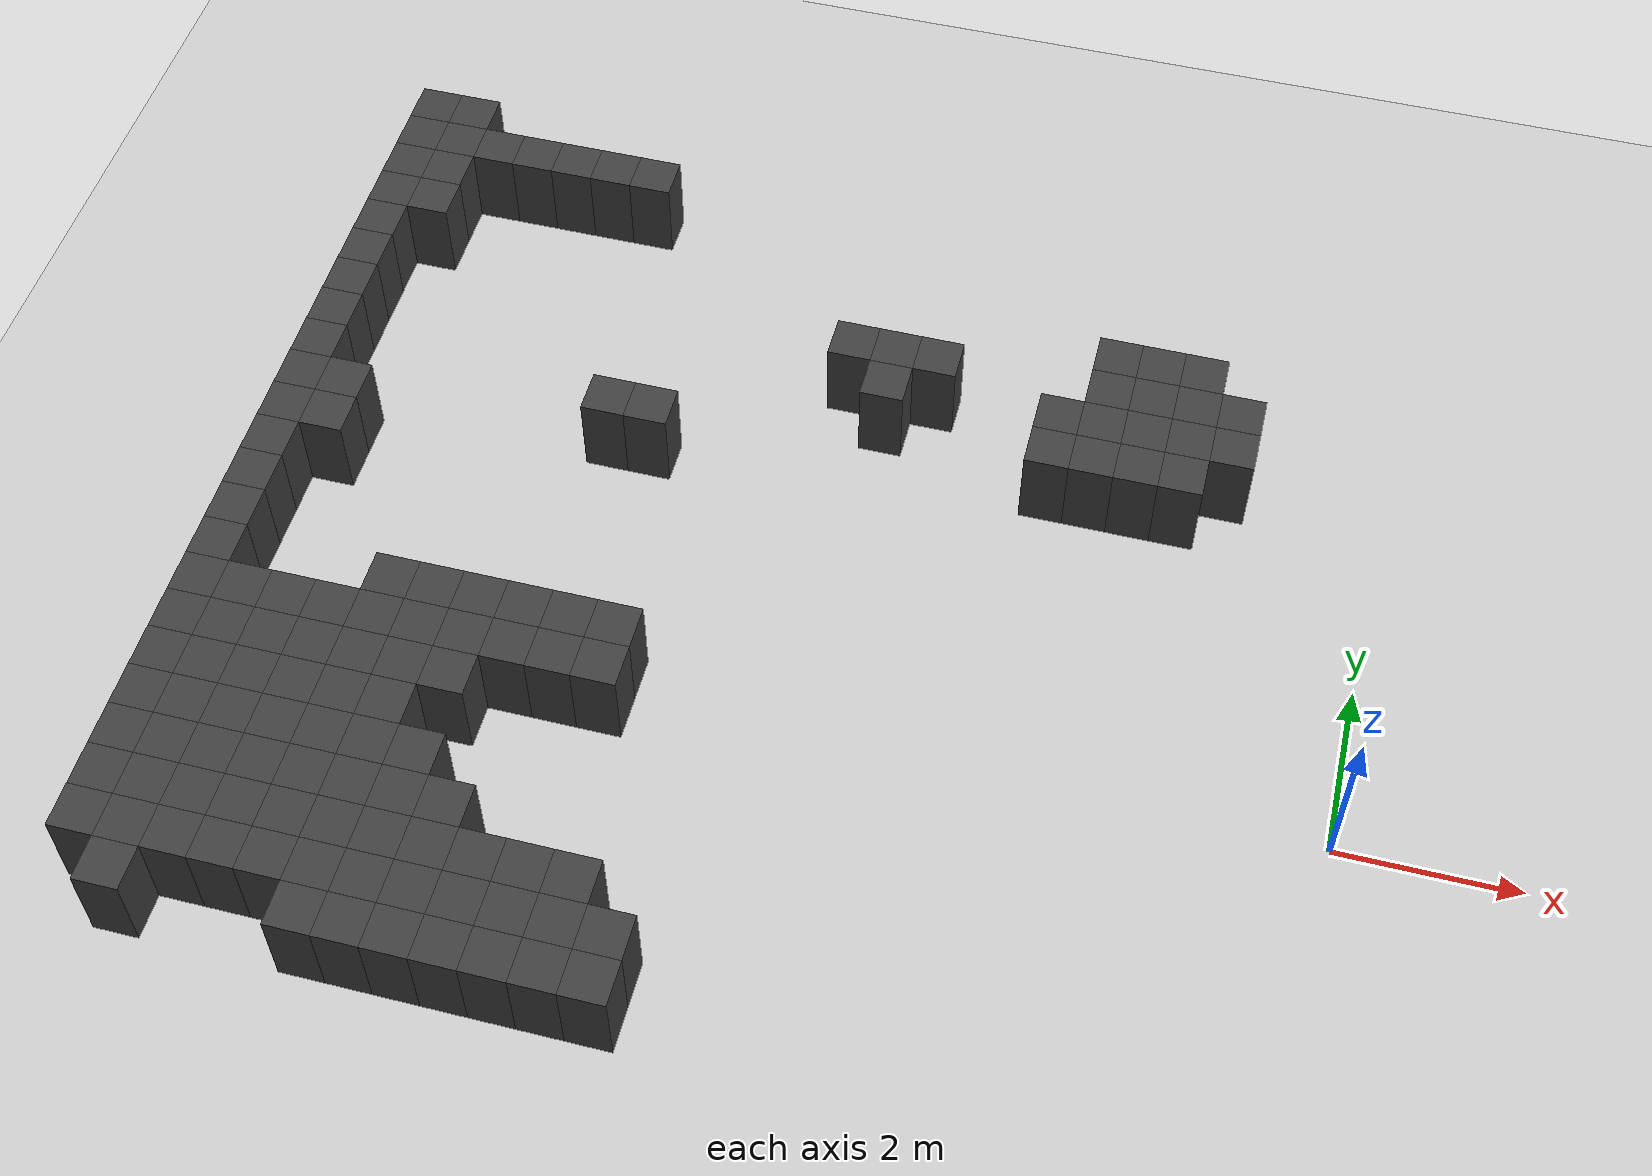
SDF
<sdf version="1.7">
 <world name="map_7972">
  <model name="ground_plane">
   <static>true</static>
   <link name="link">
    <collision name="collision">
     <geometry><plane><normal>0 0 1</normal><size>200 200</size></plane></geometry>
    </collision>
    <visual name="visual">
     <geometry><plane><normal>0 0 1</normal><size>200 200</size></plane></geometry>
     <material><ambient>0.8 0.8 0.8 1</ambient><diffuse>0.8 0.8 0.8 1</diffuse></material>
    </visual>
   </link>
  </model>
  <model name="maze_environment">
   <static>true</static>
   <link name="wall_221">
    <pose>-12.250 7.250 0.500 0 0 0</pose>
    <collision name="col"><geometry><box><size>0.5 0.5 1.0</size></box></geometry></collision>
    <visual name="vis">
     <geometry><box><size>0.5 0.5 1.0</size></box></geometry>
     <material><ambient>0.15 0.15 0.15 1</ambient><diffuse>0.25 0.25 0.25 1</diffuse></material>
    </visual>
   </link>
   <link name="wall_222">
    <pose>-11.750 7.250 0.500 0 0 0</pose>
    <collision name="col"><geometry><box><size>0.5 0.5 1.0</size></box></geometry></collision>
    <visual name="vis">
     <geometry><box><size>0.5 0.5 1.0</size></box></geometry>
     <material><ambient>0.15 0.15 0.15 1</ambient><diffuse>0.25 0.25 0.25 1</diffuse></material>
    </visual>
   </link>
   <link name="wall_241">
    <pose>-12.250 6.750 0.500 0 0 0</pose>
    <collision name="col"><geometry><box><size>0.5 0.5 1.0</size></box></geometry></collision>
    <visual name="vis">
     <geometry><box><size>0.5 0.5 1.0</size></box></geometry>
     <material><ambient>0.15 0.15 0.15 1</ambient><diffuse>0.25 0.25 0.25 1</diffuse></material>
    </visual>
   </link>
   <link name="wall_242">
    <pose>-11.750 6.750 0.500 0 0 0</pose>
    <collision name="col"><geometry><box><size>0.5 0.5 1.0</size></box></geometry></collision>
    <visual name="vis">
     <geometry><box><size>0.5 0.5 1.0</size></box></geometry>
     <material><ambient>0.15 0.15 0.15 1</ambient><diffuse>0.25 0.25 0.25 1</diffuse></material>
    </visual>
   </link>
   <link name="wall_243">
    <pose>-11.250 6.750 0.500 0 0 0</pose>
    <collision name="col"><geometry><box><size>0.5 0.5 1.0</size></box></geometry></collision>
    <visual name="vis">
     <geometry><box><size>0.5 0.5 1.0</size></box></geometry>
     <material><ambient>0.15 0.15 0.15 1</ambient><diffuse>0.25 0.25 0.25 1</diffuse></material>
    </visual>
   </link>
   <link name="wall_244">
    <pose>-10.750 6.750 0.500 0 0 0</pose>
    <collision name="col"><geometry><box><size>0.5 0.5 1.0</size></box></geometry></collision>
    <visual name="vis">
     <geometry><box><size>0.5 0.5 1.0</size></box></geometry>
     <material><ambient>0.15 0.15 0.15 1</ambient><diffuse>0.25 0.25 0.25 1</diffuse></material>
    </visual>
   </link>
   <link name="wall_245">
    <pose>-10.250 6.750 0.500 0 0 0</pose>
    <collision name="col"><geometry><box><size>0.5 0.5 1.0</size></box></geometry></collision>
    <visual name="vis">
     <geometry><box><size>0.5 0.5 1.0</size></box></geometry>
     <material><ambient>0.15 0.15 0.15 1</ambient><diffuse>0.25 0.25 0.25 1</diffuse></material>
    </visual>
   </link>
   <link name="wall_246">
    <pose>-9.750 6.750 0.500 0 0 0</pose>
    <collision name="col"><geometry><box><size>0.5 0.5 1.0</size></box></geometry></collision>
    <visual name="vis">
     <geometry><box><size>0.5 0.5 1.0</size></box></geometry>
     <material><ambient>0.15 0.15 0.15 1</ambient><diffuse>0.25 0.25 0.25 1</diffuse></material>
    </visual>
   </link>
   <link name="wall_247">
    <pose>-9.250 6.750 0.500 0 0 0</pose>
    <collision name="col"><geometry><box><size>0.5 0.5 1.0</size></box></geometry></collision>
    <visual name="vis">
     <geometry><box><size>0.5 0.5 1.0</size></box></geometry>
     <material><ambient>0.15 0.15 0.15 1</ambient><diffuse>0.25 0.25 0.25 1</diffuse></material>
    </visual>
   </link>
   <link name="wall_252">
    <pose>-12.250 6.250 0.500 0 0 0</pose>
    <collision name="col"><geometry><box><size>0.5 0.5 1.0</size></box></geometry></collision>
    <visual name="vis">
     <geometry><box><size>0.5 0.5 1.0</size></box></geometry>
     <material><ambient>0.15 0.15 0.15 1</ambient><diffuse>0.25 0.25 0.25 1</diffuse></material>
    </visual>
   </link>
   <link name="wall_253">
    <pose>-11.750 6.250 0.500 0 0 0</pose>
    <collision name="col"><geometry><box><size>0.5 0.5 1.0</size></box></geometry></collision>
    <visual name="vis">
     <geometry><box><size>0.5 0.5 1.0</size></box></geometry>
     <material><ambient>0.15 0.15 0.15 1</ambient><diffuse>0.25 0.25 0.25 1</diffuse></material>
    </visual>
   </link>
   <link name="wall_260">
    <pose>-12.250 5.750 0.500 0 0 0</pose>
    <collision name="col"><geometry><box><size>0.5 0.5 1.0</size></box></geometry></collision>
    <visual name="vis">
     <geometry><box><size>0.5 0.5 1.0</size></box></geometry>
     <material><ambient>0.15 0.15 0.15 1</ambient><diffuse>0.25 0.25 0.25 1</diffuse></material>
    </visual>
   </link>
   <link name="wall_261">
    <pose>-11.750 5.750 0.500 0 0 0</pose>
    <collision name="col"><geometry><box><size>0.5 0.5 1.0</size></box></geometry></collision>
    <visual name="vis">
     <geometry><box><size>0.5 0.5 1.0</size></box></geometry>
     <material><ambient>0.15 0.15 0.15 1</ambient><diffuse>0.25 0.25 0.25 1</diffuse></material>
    </visual>
   </link>
   <link name="wall_269">
    <pose>-12.250 5.250 0.500 0 0 0</pose>
    <collision name="col"><geometry><box><size>0.5 0.5 1.0</size></box></geometry></collision>
    <visual name="vis">
     <geometry><box><size>0.5 0.5 1.0</size></box></geometry>
     <material><ambient>0.15 0.15 0.15 1</ambient><diffuse>0.25 0.25 0.25 1</diffuse></material>
    </visual>
   </link>
   <link name="wall_270">
    <pose>-3.250 5.250 0.500 0 0 0</pose>
    <collision name="col"><geometry><box><size>0.5 0.5 1.0</size></box></geometry></collision>
    <visual name="vis">
     <geometry><box><size>0.5 0.5 1.0</size></box></geometry>
     <material><ambient>0.15 0.15 0.15 1</ambient><diffuse>0.25 0.25 0.25 1</diffuse></material>
    </visual>
   </link>
   <link name="wall_271">
    <pose>-2.750 5.250 0.500 0 0 0</pose>
    <collision name="col"><geometry><box><size>0.5 0.5 1.0</size></box></geometry></collision>
    <visual name="vis">
     <geometry><box><size>0.5 0.5 1.0</size></box></geometry>
     <material><ambient>0.15 0.15 0.15 1</ambient><diffuse>0.25 0.25 0.25 1</diffuse></material>
    </visual>
   </link>
   <link name="wall_272">
    <pose>-2.250 5.250 0.500 0 0 0</pose>
    <collision name="col"><geometry><box><size>0.5 0.5 1.0</size></box></geometry></collision>
    <visual name="vis">
     <geometry><box><size>0.5 0.5 1.0</size></box></geometry>
     <material><ambient>0.15 0.15 0.15 1</ambient><diffuse>0.25 0.25 0.25 1</diffuse></material>
    </visual>
   </link>
   <link name="wall_281">
    <pose>-12.250 4.750 0.500 0 0 0</pose>
    <collision name="col"><geometry><box><size>0.5 0.5 1.0</size></box></geometry></collision>
    <visual name="vis">
     <geometry><box><size>0.5 0.5 1.0</size></box></geometry>
     <material><ambient>0.15 0.15 0.15 1</ambient><diffuse>0.25 0.25 0.25 1</diffuse></material>
    </visual>
   </link>
   <link name="wall_282">
    <pose>-6.250 4.750 0.500 0 0 0</pose>
    <collision name="col"><geometry><box><size>0.5 0.5 1.0</size></box></geometry></collision>
    <visual name="vis">
     <geometry><box><size>0.5 0.5 1.0</size></box></geometry>
     <material><ambient>0.15 0.15 0.15 1</ambient><diffuse>0.25 0.25 0.25 1</diffuse></material>
    </visual>
   </link>
   <link name="wall_283">
    <pose>-5.750 4.750 0.500 0 0 0</pose>
    <collision name="col"><geometry><box><size>0.5 0.5 1.0</size></box></geometry></collision>
    <visual name="vis">
     <geometry><box><size>0.5 0.5 1.0</size></box></geometry>
     <material><ambient>0.15 0.15 0.15 1</ambient><diffuse>0.25 0.25 0.25 1</diffuse></material>
    </visual>
   </link>
   <link name="wall_284">
    <pose>-5.250 4.750 0.500 0 0 0</pose>
    <collision name="col"><geometry><box><size>0.5 0.5 1.0</size></box></geometry></collision>
    <visual name="vis">
     <geometry><box><size>0.5 0.5 1.0</size></box></geometry>
     <material><ambient>0.15 0.15 0.15 1</ambient><diffuse>0.25 0.25 0.25 1</diffuse></material>
    </visual>
   </link>
   <link name="wall_285">
    <pose>-3.250 4.750 0.500 0 0 0</pose>
    <collision name="col"><geometry><box><size>0.5 0.5 1.0</size></box></geometry></collision>
    <visual name="vis">
     <geometry><box><size>0.5 0.5 1.0</size></box></geometry>
     <material><ambient>0.15 0.15 0.15 1</ambient><diffuse>0.25 0.25 0.25 1</diffuse></material>
    </visual>
   </link>
   <link name="wall_286">
    <pose>-2.750 4.750 0.500 0 0 0</pose>
    <collision name="col"><geometry><box><size>0.5 0.5 1.0</size></box></geometry></collision>
    <visual name="vis">
     <geometry><box><size>0.5 0.5 1.0</size></box></geometry>
     <material><ambient>0.15 0.15 0.15 1</ambient><diffuse>0.25 0.25 0.25 1</diffuse></material>
    </visual>
   </link>
   <link name="wall_287">
    <pose>-2.250 4.750 0.500 0 0 0</pose>
    <collision name="col"><geometry><box><size>0.5 0.5 1.0</size></box></geometry></collision>
    <visual name="vis">
     <geometry><box><size>0.5 0.5 1.0</size></box></geometry>
     <material><ambient>0.15 0.15 0.15 1</ambient><diffuse>0.25 0.25 0.25 1</diffuse></material>
    </visual>
   </link>
   <link name="wall_288">
    <pose>-1.750 4.750 0.500 0 0 0</pose>
    <collision name="col"><geometry><box><size>0.5 0.5 1.0</size></box></geometry></collision>
    <visual name="vis">
     <geometry><box><size>0.5 0.5 1.0</size></box></geometry>
     <material><ambient>0.15 0.15 0.15 1</ambient><diffuse>0.25 0.25 0.25 1</diffuse></material>
    </visual>
   </link>
   <link name="wall_299">
    <pose>-12.250 4.250 0.500 0 0 0</pose>
    <collision name="col"><geometry><box><size>0.5 0.5 1.0</size></box></geometry></collision>
    <visual name="vis">
     <geometry><box><size>0.5 0.5 1.0</size></box></geometry>
     <material><ambient>0.15 0.15 0.15 1</ambient><diffuse>0.25 0.25 0.25 1</diffuse></material>
    </visual>
   </link>
   <link name="wall_300">
    <pose>-5.750 4.250 0.500 0 0 0</pose>
    <collision name="col"><geometry><box><size>0.5 0.5 1.0</size></box></geometry></collision>
    <visual name="vis">
     <geometry><box><size>0.5 0.5 1.0</size></box></geometry>
     <material><ambient>0.15 0.15 0.15 1</ambient><diffuse>0.25 0.25 0.25 1</diffuse></material>
    </visual>
   </link>
   <link name="wall_301">
    <pose>-3.750 4.250 0.500 0 0 0</pose>
    <collision name="col"><geometry><box><size>0.5 0.5 1.0</size></box></geometry></collision>
    <visual name="vis">
     <geometry><box><size>0.5 0.5 1.0</size></box></geometry>
     <material><ambient>0.15 0.15 0.15 1</ambient><diffuse>0.25 0.25 0.25 1</diffuse></material>
    </visual>
   </link>
   <link name="wall_302">
    <pose>-3.250 4.250 0.500 0 0 0</pose>
    <collision name="col"><geometry><box><size>0.5 0.5 1.0</size></box></geometry></collision>
    <visual name="vis">
     <geometry><box><size>0.5 0.5 1.0</size></box></geometry>
     <material><ambient>0.15 0.15 0.15 1</ambient><diffuse>0.25 0.25 0.25 1</diffuse></material>
    </visual>
   </link>
   <link name="wall_303">
    <pose>-2.750 4.250 0.500 0 0 0</pose>
    <collision name="col"><geometry><box><size>0.5 0.5 1.0</size></box></geometry></collision>
    <visual name="vis">
     <geometry><box><size>0.5 0.5 1.0</size></box></geometry>
     <material><ambient>0.15 0.15 0.15 1</ambient><diffuse>0.25 0.25 0.25 1</diffuse></material>
    </visual>
   </link>
   <link name="wall_304">
    <pose>-2.250 4.250 0.500 0 0 0</pose>
    <collision name="col"><geometry><box><size>0.5 0.5 1.0</size></box></geometry></collision>
    <visual name="vis">
     <geometry><box><size>0.5 0.5 1.0</size></box></geometry>
     <material><ambient>0.15 0.15 0.15 1</ambient><diffuse>0.25 0.25 0.25 1</diffuse></material>
    </visual>
   </link>
   <link name="wall_305">
    <pose>-1.750 4.250 0.500 0 0 0</pose>
    <collision name="col"><geometry><box><size>0.5 0.5 1.0</size></box></geometry></collision>
    <visual name="vis">
     <geometry><box><size>0.5 0.5 1.0</size></box></geometry>
     <material><ambient>0.15 0.15 0.15 1</ambient><diffuse>0.25 0.25 0.25 1</diffuse></material>
    </visual>
   </link>
   <link name="wall_318">
    <pose>-12.250 3.750 0.500 0 0 0</pose>
    <collision name="col"><geometry><box><size>0.5 0.5 1.0</size></box></geometry></collision>
    <visual name="vis">
     <geometry><box><size>0.5 0.5 1.0</size></box></geometry>
     <material><ambient>0.15 0.15 0.15 1</ambient><diffuse>0.25 0.25 0.25 1</diffuse></material>
    </visual>
   </link>
   <link name="wall_319">
    <pose>-3.750 3.750 0.500 0 0 0</pose>
    <collision name="col"><geometry><box><size>0.5 0.5 1.0</size></box></geometry></collision>
    <visual name="vis">
     <geometry><box><size>0.5 0.5 1.0</size></box></geometry>
     <material><ambient>0.15 0.15 0.15 1</ambient><diffuse>0.25 0.25 0.25 1</diffuse></material>
    </visual>
   </link>
   <link name="wall_320">
    <pose>-3.250 3.750 0.500 0 0 0</pose>
    <collision name="col"><geometry><box><size>0.5 0.5 1.0</size></box></geometry></collision>
    <visual name="vis">
     <geometry><box><size>0.5 0.5 1.0</size></box></geometry>
     <material><ambient>0.15 0.15 0.15 1</ambient><diffuse>0.25 0.25 0.25 1</diffuse></material>
    </visual>
   </link>
   <link name="wall_321">
    <pose>-2.750 3.750 0.500 0 0 0</pose>
    <collision name="col"><geometry><box><size>0.5 0.5 1.0</size></box></geometry></collision>
    <visual name="vis">
     <geometry><box><size>0.5 0.5 1.0</size></box></geometry>
     <material><ambient>0.15 0.15 0.15 1</ambient><diffuse>0.25 0.25 0.25 1</diffuse></material>
    </visual>
   </link>
   <link name="wall_322">
    <pose>-2.250 3.750 0.500 0 0 0</pose>
    <collision name="col"><geometry><box><size>0.5 0.5 1.0</size></box></geometry></collision>
    <visual name="vis">
     <geometry><box><size>0.5 0.5 1.0</size></box></geometry>
     <material><ambient>0.15 0.15 0.15 1</ambient><diffuse>0.25 0.25 0.25 1</diffuse></material>
    </visual>
   </link>
   <link name="wall_334">
    <pose>-12.250 3.250 0.500 0 0 0</pose>
    <collision name="col"><geometry><box><size>0.5 0.5 1.0</size></box></geometry></collision>
    <visual name="vis">
     <geometry><box><size>0.5 0.5 1.0</size></box></geometry>
     <material><ambient>0.15 0.15 0.15 1</ambient><diffuse>0.25 0.25 0.25 1</diffuse></material>
    </visual>
   </link>
   <link name="wall_335">
    <pose>-8.750 3.250 0.500 0 0 0</pose>
    <collision name="col"><geometry><box><size>0.5 0.5 1.0</size></box></geometry></collision>
    <visual name="vis">
     <geometry><box><size>0.5 0.5 1.0</size></box></geometry>
     <material><ambient>0.15 0.15 0.15 1</ambient><diffuse>0.25 0.25 0.25 1</diffuse></material>
    </visual>
   </link>
   <link name="wall_336">
    <pose>-8.250 3.250 0.500 0 0 0</pose>
    <collision name="col"><geometry><box><size>0.5 0.5 1.0</size></box></geometry></collision>
    <visual name="vis">
     <geometry><box><size>0.5 0.5 1.0</size></box></geometry>
     <material><ambient>0.15 0.15 0.15 1</ambient><diffuse>0.25 0.25 0.25 1</diffuse></material>
    </visual>
   </link>
   <link name="wall_344">
    <pose>-12.250 2.750 0.500 0 0 0</pose>
    <collision name="col"><geometry><box><size>0.5 0.5 1.0</size></box></geometry></collision>
    <visual name="vis">
     <geometry><box><size>0.5 0.5 1.0</size></box></geometry>
     <material><ambient>0.15 0.15 0.15 1</ambient><diffuse>0.25 0.25 0.25 1</diffuse></material>
    </visual>
   </link>
   <link name="wall_345">
    <pose>-11.750 2.750 0.500 0 0 0</pose>
    <collision name="col"><geometry><box><size>0.5 0.5 1.0</size></box></geometry></collision>
    <visual name="vis">
     <geometry><box><size>0.5 0.5 1.0</size></box></geometry>
     <material><ambient>0.15 0.15 0.15 1</ambient><diffuse>0.25 0.25 0.25 1</diffuse></material>
    </visual>
   </link>
   <link name="wall_349">
    <pose>-12.250 2.250 0.500 0 0 0</pose>
    <collision name="col"><geometry><box><size>0.5 0.5 1.0</size></box></geometry></collision>
    <visual name="vis">
     <geometry><box><size>0.5 0.5 1.0</size></box></geometry>
     <material><ambient>0.15 0.15 0.15 1</ambient><diffuse>0.25 0.25 0.25 1</diffuse></material>
    </visual>
   </link>
   <link name="wall_350">
    <pose>-11.750 2.250 0.500 0 0 0</pose>
    <collision name="col"><geometry><box><size>0.5 0.5 1.0</size></box></geometry></collision>
    <visual name="vis">
     <geometry><box><size>0.5 0.5 1.0</size></box></geometry>
     <material><ambient>0.15 0.15 0.15 1</ambient><diffuse>0.25 0.25 0.25 1</diffuse></material>
    </visual>
   </link>
   <link name="wall_353">
    <pose>-12.250 1.750 0.500 0 0 0</pose>
    <collision name="col"><geometry><box><size>0.5 0.5 1.0</size></box></geometry></collision>
    <visual name="vis">
     <geometry><box><size>0.5 0.5 1.0</size></box></geometry>
     <material><ambient>0.15 0.15 0.15 1</ambient><diffuse>0.25 0.25 0.25 1</diffuse></material>
    </visual>
   </link>
   <link name="wall_356">
    <pose>-12.250 1.250 0.500 0 0 0</pose>
    <collision name="col"><geometry><box><size>0.5 0.5 1.0</size></box></geometry></collision>
    <visual name="vis">
     <geometry><box><size>0.5 0.5 1.0</size></box></geometry>
     <material><ambient>0.15 0.15 0.15 1</ambient><diffuse>0.25 0.25 0.25 1</diffuse></material>
    </visual>
   </link>
   <link name="wall_360">
    <pose>-12.250 0.750 0.500 0 0 0</pose>
    <collision name="col"><geometry><box><size>0.5 0.5 1.0</size></box></geometry></collision>
    <visual name="vis">
     <geometry><box><size>0.5 0.5 1.0</size></box></geometry>
     <material><ambient>0.15 0.15 0.15 1</ambient><diffuse>0.25 0.25 0.25 1</diffuse></material>
    </visual>
   </link>
   <link name="wall_370">
    <pose>-12.250 0.250 0.500 0 0 0</pose>
    <collision name="col"><geometry><box><size>0.5 0.5 1.0</size></box></geometry></collision>
    <visual name="vis">
     <geometry><box><size>0.5 0.5 1.0</size></box></geometry>
     <material><ambient>0.15 0.15 0.15 1</ambient><diffuse>0.25 0.25 0.25 1</diffuse></material>
    </visual>
   </link>
   <link name="wall_371">
    <pose>-10.250 0.250 0.500 0 0 0</pose>
    <collision name="col"><geometry><box><size>0.5 0.5 1.0</size></box></geometry></collision>
    <visual name="vis">
     <geometry><box><size>0.5 0.5 1.0</size></box></geometry>
     <material><ambient>0.15 0.15 0.15 1</ambient><diffuse>0.25 0.25 0.25 1</diffuse></material>
    </visual>
   </link>
   <link name="wall_372">
    <pose>-9.750 0.250 0.500 0 0 0</pose>
    <collision name="col"><geometry><box><size>0.5 0.5 1.0</size></box></geometry></collision>
    <visual name="vis">
     <geometry><box><size>0.5 0.5 1.0</size></box></geometry>
     <material><ambient>0.15 0.15 0.15 1</ambient><diffuse>0.25 0.25 0.25 1</diffuse></material>
    </visual>
   </link>
   <link name="wall_373">
    <pose>-9.250 0.250 0.500 0 0 0</pose>
    <collision name="col"><geometry><box><size>0.5 0.5 1.0</size></box></geometry></collision>
    <visual name="vis">
     <geometry><box><size>0.5 0.5 1.0</size></box></geometry>
     <material><ambient>0.15 0.15 0.15 1</ambient><diffuse>0.25 0.25 0.25 1</diffuse></material>
    </visual>
   </link>
   <link name="wall_374">
    <pose>-8.750 0.250 0.500 0 0 0</pose>
    <collision name="col"><geometry><box><size>0.5 0.5 1.0</size></box></geometry></collision>
    <visual name="vis">
     <geometry><box><size>0.5 0.5 1.0</size></box></geometry>
     <material><ambient>0.15 0.15 0.15 1</ambient><diffuse>0.25 0.25 0.25 1</diffuse></material>
    </visual>
   </link>
   <link name="wall_375">
    <pose>-8.250 0.250 0.500 0 0 0</pose>
    <collision name="col"><geometry><box><size>0.5 0.5 1.0</size></box></geometry></collision>
    <visual name="vis">
     <geometry><box><size>0.5 0.5 1.0</size></box></geometry>
     <material><ambient>0.15 0.15 0.15 1</ambient><diffuse>0.25 0.25 0.25 1</diffuse></material>
    </visual>
   </link>
   <link name="wall_376">
    <pose>-7.750 0.250 0.500 0 0 0</pose>
    <collision name="col"><geometry><box><size>0.5 0.5 1.0</size></box></geometry></collision>
    <visual name="vis">
     <geometry><box><size>0.5 0.5 1.0</size></box></geometry>
     <material><ambient>0.15 0.15 0.15 1</ambient><diffuse>0.25 0.25 0.25 1</diffuse></material>
    </visual>
   </link>
   <link name="wall_391">
    <pose>-12.250 -0.250 0.500 0 0 0</pose>
    <collision name="col"><geometry><box><size>0.5 0.5 1.0</size></box></geometry></collision>
    <visual name="vis">
     <geometry><box><size>0.5 0.5 1.0</size></box></geometry>
     <material><ambient>0.15 0.15 0.15 1</ambient><diffuse>0.25 0.25 0.25 1</diffuse></material>
    </visual>
   </link>
   <link name="wall_392">
    <pose>-11.750 -0.250 0.500 0 0 0</pose>
    <collision name="col"><geometry><box><size>0.5 0.5 1.0</size></box></geometry></collision>
    <visual name="vis">
     <geometry><box><size>0.5 0.5 1.0</size></box></geometry>
     <material><ambient>0.15 0.15 0.15 1</ambient><diffuse>0.25 0.25 0.25 1</diffuse></material>
    </visual>
   </link>
   <link name="wall_393">
    <pose>-11.250 -0.250 0.500 0 0 0</pose>
    <collision name="col"><geometry><box><size>0.5 0.5 1.0</size></box></geometry></collision>
    <visual name="vis">
     <geometry><box><size>0.5 0.5 1.0</size></box></geometry>
     <material><ambient>0.15 0.15 0.15 1</ambient><diffuse>0.25 0.25 0.25 1</diffuse></material>
    </visual>
   </link>
   <link name="wall_394">
    <pose>-10.750 -0.250 0.500 0 0 0</pose>
    <collision name="col"><geometry><box><size>0.5 0.5 1.0</size></box></geometry></collision>
    <visual name="vis">
     <geometry><box><size>0.5 0.5 1.0</size></box></geometry>
     <material><ambient>0.15 0.15 0.15 1</ambient><diffuse>0.25 0.25 0.25 1</diffuse></material>
    </visual>
   </link>
   <link name="wall_395">
    <pose>-10.250 -0.250 0.500 0 0 0</pose>
    <collision name="col"><geometry><box><size>0.5 0.5 1.0</size></box></geometry></collision>
    <visual name="vis">
     <geometry><box><size>0.5 0.5 1.0</size></box></geometry>
     <material><ambient>0.15 0.15 0.15 1</ambient><diffuse>0.25 0.25 0.25 1</diffuse></material>
    </visual>
   </link>
   <link name="wall_396">
    <pose>-9.750 -0.250 0.500 0 0 0</pose>
    <collision name="col"><geometry><box><size>0.5 0.5 1.0</size></box></geometry></collision>
    <visual name="vis">
     <geometry><box><size>0.5 0.5 1.0</size></box></geometry>
     <material><ambient>0.15 0.15 0.15 1</ambient><diffuse>0.25 0.25 0.25 1</diffuse></material>
    </visual>
   </link>
   <link name="wall_397">
    <pose>-9.250 -0.250 0.500 0 0 0</pose>
    <collision name="col"><geometry><box><size>0.5 0.5 1.0</size></box></geometry></collision>
    <visual name="vis">
     <geometry><box><size>0.5 0.5 1.0</size></box></geometry>
     <material><ambient>0.15 0.15 0.15 1</ambient><diffuse>0.25 0.25 0.25 1</diffuse></material>
    </visual>
   </link>
   <link name="wall_398">
    <pose>-8.750 -0.250 0.500 0 0 0</pose>
    <collision name="col"><geometry><box><size>0.5 0.5 1.0</size></box></geometry></collision>
    <visual name="vis">
     <geometry><box><size>0.5 0.5 1.0</size></box></geometry>
     <material><ambient>0.15 0.15 0.15 1</ambient><diffuse>0.25 0.25 0.25 1</diffuse></material>
    </visual>
   </link>
   <link name="wall_399">
    <pose>-8.250 -0.250 0.500 0 0 0</pose>
    <collision name="col"><geometry><box><size>0.5 0.5 1.0</size></box></geometry></collision>
    <visual name="vis">
     <geometry><box><size>0.5 0.5 1.0</size></box></geometry>
     <material><ambient>0.15 0.15 0.15 1</ambient><diffuse>0.25 0.25 0.25 1</diffuse></material>
    </visual>
   </link>
   <link name="wall_400">
    <pose>-7.750 -0.250 0.500 0 0 0</pose>
    <collision name="col"><geometry><box><size>0.5 0.5 1.0</size></box></geometry></collision>
    <visual name="vis">
     <geometry><box><size>0.5 0.5 1.0</size></box></geometry>
     <material><ambient>0.15 0.15 0.15 1</ambient><diffuse>0.25 0.25 0.25 1</diffuse></material>
    </visual>
   </link>
   <link name="wall_424">
    <pose>-12.250 -0.750 0.500 0 0 0</pose>
    <collision name="col"><geometry><box><size>0.5 0.5 1.0</size></box></geometry></collision>
    <visual name="vis">
     <geometry><box><size>0.5 0.5 1.0</size></box></geometry>
     <material><ambient>0.15 0.15 0.15 1</ambient><diffuse>0.25 0.25 0.25 1</diffuse></material>
    </visual>
   </link>
   <link name="wall_425">
    <pose>-11.750 -0.750 0.500 0 0 0</pose>
    <collision name="col"><geometry><box><size>0.5 0.5 1.0</size></box></geometry></collision>
    <visual name="vis">
     <geometry><box><size>0.5 0.5 1.0</size></box></geometry>
     <material><ambient>0.15 0.15 0.15 1</ambient><diffuse>0.25 0.25 0.25 1</diffuse></material>
    </visual>
   </link>
   <link name="wall_426">
    <pose>-11.250 -0.750 0.500 0 0 0</pose>
    <collision name="col"><geometry><box><size>0.5 0.5 1.0</size></box></geometry></collision>
    <visual name="vis">
     <geometry><box><size>0.5 0.5 1.0</size></box></geometry>
     <material><ambient>0.15 0.15 0.15 1</ambient><diffuse>0.25 0.25 0.25 1</diffuse></material>
    </visual>
   </link>
   <link name="wall_427">
    <pose>-10.750 -0.750 0.500 0 0 0</pose>
    <collision name="col"><geometry><box><size>0.5 0.5 1.0</size></box></geometry></collision>
    <visual name="vis">
     <geometry><box><size>0.5 0.5 1.0</size></box></geometry>
     <material><ambient>0.15 0.15 0.15 1</ambient><diffuse>0.25 0.25 0.25 1</diffuse></material>
    </visual>
   </link>
   <link name="wall_428">
    <pose>-10.250 -0.750 0.500 0 0 0</pose>
    <collision name="col"><geometry><box><size>0.5 0.5 1.0</size></box></geometry></collision>
    <visual name="vis">
     <geometry><box><size>0.5 0.5 1.0</size></box></geometry>
     <material><ambient>0.15 0.15 0.15 1</ambient><diffuse>0.25 0.25 0.25 1</diffuse></material>
    </visual>
   </link>
   <link name="wall_429">
    <pose>-9.750 -0.750 0.500 0 0 0</pose>
    <collision name="col"><geometry><box><size>0.5 0.5 1.0</size></box></geometry></collision>
    <visual name="vis">
     <geometry><box><size>0.5 0.5 1.0</size></box></geometry>
     <material><ambient>0.15 0.15 0.15 1</ambient><diffuse>0.25 0.25 0.25 1</diffuse></material>
    </visual>
   </link>
   <link name="wall_430">
    <pose>-9.250 -0.750 0.500 0 0 0</pose>
    <collision name="col"><geometry><box><size>0.5 0.5 1.0</size></box></geometry></collision>
    <visual name="vis">
     <geometry><box><size>0.5 0.5 1.0</size></box></geometry>
     <material><ambient>0.15 0.15 0.15 1</ambient><diffuse>0.25 0.25 0.25 1</diffuse></material>
    </visual>
   </link>
   <link name="wall_455">
    <pose>-12.250 -1.250 0.500 0 0 0</pose>
    <collision name="col"><geometry><box><size>0.5 0.5 1.0</size></box></geometry></collision>
    <visual name="vis">
     <geometry><box><size>0.5 0.5 1.0</size></box></geometry>
     <material><ambient>0.15 0.15 0.15 1</ambient><diffuse>0.25 0.25 0.25 1</diffuse></material>
    </visual>
   </link>
   <link name="wall_456">
    <pose>-11.750 -1.250 0.500 0 0 0</pose>
    <collision name="col"><geometry><box><size>0.5 0.5 1.0</size></box></geometry></collision>
    <visual name="vis">
     <geometry><box><size>0.5 0.5 1.0</size></box></geometry>
     <material><ambient>0.15 0.15 0.15 1</ambient><diffuse>0.25 0.25 0.25 1</diffuse></material>
    </visual>
   </link>
   <link name="wall_457">
    <pose>-11.250 -1.250 0.500 0 0 0</pose>
    <collision name="col"><geometry><box><size>0.5 0.5 1.0</size></box></geometry></collision>
    <visual name="vis">
     <geometry><box><size>0.5 0.5 1.0</size></box></geometry>
     <material><ambient>0.15 0.15 0.15 1</ambient><diffuse>0.25 0.25 0.25 1</diffuse></material>
    </visual>
   </link>
   <link name="wall_458">
    <pose>-10.750 -1.250 0.500 0 0 0</pose>
    <collision name="col"><geometry><box><size>0.5 0.5 1.0</size></box></geometry></collision>
    <visual name="vis">
     <geometry><box><size>0.5 0.5 1.0</size></box></geometry>
     <material><ambient>0.15 0.15 0.15 1</ambient><diffuse>0.25 0.25 0.25 1</diffuse></material>
    </visual>
   </link>
   <link name="wall_459">
    <pose>-10.250 -1.250 0.500 0 0 0</pose>
    <collision name="col"><geometry><box><size>0.5 0.5 1.0</size></box></geometry></collision>
    <visual name="vis">
     <geometry><box><size>0.5 0.5 1.0</size></box></geometry>
     <material><ambient>0.15 0.15 0.15 1</ambient><diffuse>0.25 0.25 0.25 1</diffuse></material>
    </visual>
   </link>
   <link name="wall_460">
    <pose>-9.750 -1.250 0.500 0 0 0</pose>
    <collision name="col"><geometry><box><size>0.5 0.5 1.0</size></box></geometry></collision>
    <visual name="vis">
     <geometry><box><size>0.5 0.5 1.0</size></box></geometry>
     <material><ambient>0.15 0.15 0.15 1</ambient><diffuse>0.25 0.25 0.25 1</diffuse></material>
    </visual>
   </link>
   <link name="wall_485">
    <pose>-12.250 -1.750 0.500 0 0 0</pose>
    <collision name="col"><geometry><box><size>0.5 0.5 1.0</size></box></geometry></collision>
    <visual name="vis">
     <geometry><box><size>0.5 0.5 1.0</size></box></geometry>
     <material><ambient>0.15 0.15 0.15 1</ambient><diffuse>0.25 0.25 0.25 1</diffuse></material>
    </visual>
   </link>
   <link name="wall_486">
    <pose>-11.750 -1.750 0.500 0 0 0</pose>
    <collision name="col"><geometry><box><size>0.5 0.5 1.0</size></box></geometry></collision>
    <visual name="vis">
     <geometry><box><size>0.5 0.5 1.0</size></box></geometry>
     <material><ambient>0.15 0.15 0.15 1</ambient><diffuse>0.25 0.25 0.25 1</diffuse></material>
    </visual>
   </link>
   <link name="wall_487">
    <pose>-11.250 -1.750 0.500 0 0 0</pose>
    <collision name="col"><geometry><box><size>0.5 0.5 1.0</size></box></geometry></collision>
    <visual name="vis">
     <geometry><box><size>0.5 0.5 1.0</size></box></geometry>
     <material><ambient>0.15 0.15 0.15 1</ambient><diffuse>0.25 0.25 0.25 1</diffuse></material>
    </visual>
   </link>
   <link name="wall_488">
    <pose>-10.750 -1.750 0.500 0 0 0</pose>
    <collision name="col"><geometry><box><size>0.5 0.5 1.0</size></box></geometry></collision>
    <visual name="vis">
     <geometry><box><size>0.5 0.5 1.0</size></box></geometry>
     <material><ambient>0.15 0.15 0.15 1</ambient><diffuse>0.25 0.25 0.25 1</diffuse></material>
    </visual>
   </link>
   <link name="wall_489">
    <pose>-10.250 -1.750 0.500 0 0 0</pose>
    <collision name="col"><geometry><box><size>0.5 0.5 1.0</size></box></geometry></collision>
    <visual name="vis">
     <geometry><box><size>0.5 0.5 1.0</size></box></geometry>
     <material><ambient>0.15 0.15 0.15 1</ambient><diffuse>0.25 0.25 0.25 1</diffuse></material>
    </visual>
   </link>
   <link name="wall_490">
    <pose>-9.750 -1.750 0.500 0 0 0</pose>
    <collision name="col"><geometry><box><size>0.5 0.5 1.0</size></box></geometry></collision>
    <visual name="vis">
     <geometry><box><size>0.5 0.5 1.0</size></box></geometry>
     <material><ambient>0.15 0.15 0.15 1</ambient><diffuse>0.25 0.25 0.25 1</diffuse></material>
    </visual>
   </link>
   <link name="wall_491">
    <pose>-9.250 -1.750 0.500 0 0 0</pose>
    <collision name="col"><geometry><box><size>0.5 0.5 1.0</size></box></geometry></collision>
    <visual name="vis">
     <geometry><box><size>0.5 0.5 1.0</size></box></geometry>
     <material><ambient>0.15 0.15 0.15 1</ambient><diffuse>0.25 0.25 0.25 1</diffuse></material>
    </visual>
   </link>
   <link name="wall_514">
    <pose>-12.250 -2.250 0.500 0 0 0</pose>
    <collision name="col"><geometry><box><size>0.5 0.5 1.0</size></box></geometry></collision>
    <visual name="vis">
     <geometry><box><size>0.5 0.5 1.0</size></box></geometry>
     <material><ambient>0.15 0.15 0.15 1</ambient><diffuse>0.25 0.25 0.25 1</diffuse></material>
    </visual>
   </link>
   <link name="wall_515">
    <pose>-11.750 -2.250 0.500 0 0 0</pose>
    <collision name="col"><geometry><box><size>0.5 0.5 1.0</size></box></geometry></collision>
    <visual name="vis">
     <geometry><box><size>0.5 0.5 1.0</size></box></geometry>
     <material><ambient>0.15 0.15 0.15 1</ambient><diffuse>0.25 0.25 0.25 1</diffuse></material>
    </visual>
   </link>
   <link name="wall_516">
    <pose>-11.250 -2.250 0.500 0 0 0</pose>
    <collision name="col"><geometry><box><size>0.5 0.5 1.0</size></box></geometry></collision>
    <visual name="vis">
     <geometry><box><size>0.5 0.5 1.0</size></box></geometry>
     <material><ambient>0.15 0.15 0.15 1</ambient><diffuse>0.25 0.25 0.25 1</diffuse></material>
    </visual>
   </link>
   <link name="wall_517">
    <pose>-10.750 -2.250 0.500 0 0 0</pose>
    <collision name="col"><geometry><box><size>0.5 0.5 1.0</size></box></geometry></collision>
    <visual name="vis">
     <geometry><box><size>0.5 0.5 1.0</size></box></geometry>
     <material><ambient>0.15 0.15 0.15 1</ambient><diffuse>0.25 0.25 0.25 1</diffuse></material>
    </visual>
   </link>
   <link name="wall_518">
    <pose>-10.250 -2.250 0.500 0 0 0</pose>
    <collision name="col"><geometry><box><size>0.5 0.5 1.0</size></box></geometry></collision>
    <visual name="vis">
     <geometry><box><size>0.5 0.5 1.0</size></box></geometry>
     <material><ambient>0.15 0.15 0.15 1</ambient><diffuse>0.25 0.25 0.25 1</diffuse></material>
    </visual>
   </link>
   <link name="wall_519">
    <pose>-9.750 -2.250 0.500 0 0 0</pose>
    <collision name="col"><geometry><box><size>0.5 0.5 1.0</size></box></geometry></collision>
    <visual name="vis">
     <geometry><box><size>0.5 0.5 1.0</size></box></geometry>
     <material><ambient>0.15 0.15 0.15 1</ambient><diffuse>0.25 0.25 0.25 1</diffuse></material>
    </visual>
   </link>
   <link name="wall_520">
    <pose>-9.250 -2.250 0.500 0 0 0</pose>
    <collision name="col"><geometry><box><size>0.5 0.5 1.0</size></box></geometry></collision>
    <visual name="vis">
     <geometry><box><size>0.5 0.5 1.0</size></box></geometry>
     <material><ambient>0.15 0.15 0.15 1</ambient><diffuse>0.25 0.25 0.25 1</diffuse></material>
    </visual>
   </link>
   <link name="wall_521">
    <pose>-8.750 -2.250 0.500 0 0 0</pose>
    <collision name="col"><geometry><box><size>0.5 0.5 1.0</size></box></geometry></collision>
    <visual name="vis">
     <geometry><box><size>0.5 0.5 1.0</size></box></geometry>
     <material><ambient>0.15 0.15 0.15 1</ambient><diffuse>0.25 0.25 0.25 1</diffuse></material>
    </visual>
   </link>
   <link name="wall_541">
    <pose>-12.250 -2.750 0.500 0 0 0</pose>
    <collision name="col"><geometry><box><size>0.5 0.5 1.0</size></box></geometry></collision>
    <visual name="vis">
     <geometry><box><size>0.5 0.5 1.0</size></box></geometry>
     <material><ambient>0.15 0.15 0.15 1</ambient><diffuse>0.25 0.25 0.25 1</diffuse></material>
    </visual>
   </link>
   <link name="wall_542">
    <pose>-11.750 -2.750 0.500 0 0 0</pose>
    <collision name="col"><geometry><box><size>0.5 0.5 1.0</size></box></geometry></collision>
    <visual name="vis">
     <geometry><box><size>0.5 0.5 1.0</size></box></geometry>
     <material><ambient>0.15 0.15 0.15 1</ambient><diffuse>0.25 0.25 0.25 1</diffuse></material>
    </visual>
   </link>
   <link name="wall_543">
    <pose>-11.250 -2.750 0.500 0 0 0</pose>
    <collision name="col"><geometry><box><size>0.5 0.5 1.0</size></box></geometry></collision>
    <visual name="vis">
     <geometry><box><size>0.5 0.5 1.0</size></box></geometry>
     <material><ambient>0.15 0.15 0.15 1</ambient><diffuse>0.25 0.25 0.25 1</diffuse></material>
    </visual>
   </link>
   <link name="wall_544">
    <pose>-10.750 -2.750 0.500 0 0 0</pose>
    <collision name="col"><geometry><box><size>0.5 0.5 1.0</size></box></geometry></collision>
    <visual name="vis">
     <geometry><box><size>0.5 0.5 1.0</size></box></geometry>
     <material><ambient>0.15 0.15 0.15 1</ambient><diffuse>0.25 0.25 0.25 1</diffuse></material>
    </visual>
   </link>
   <link name="wall_545">
    <pose>-10.250 -2.750 0.500 0 0 0</pose>
    <collision name="col"><geometry><box><size>0.5 0.5 1.0</size></box></geometry></collision>
    <visual name="vis">
     <geometry><box><size>0.5 0.5 1.0</size></box></geometry>
     <material><ambient>0.15 0.15 0.15 1</ambient><diffuse>0.25 0.25 0.25 1</diffuse></material>
    </visual>
   </link>
   <link name="wall_546">
    <pose>-9.750 -2.750 0.500 0 0 0</pose>
    <collision name="col"><geometry><box><size>0.5 0.5 1.0</size></box></geometry></collision>
    <visual name="vis">
     <geometry><box><size>0.5 0.5 1.0</size></box></geometry>
     <material><ambient>0.15 0.15 0.15 1</ambient><diffuse>0.25 0.25 0.25 1</diffuse></material>
    </visual>
   </link>
   <link name="wall_547">
    <pose>-9.250 -2.750 0.500 0 0 0</pose>
    <collision name="col"><geometry><box><size>0.5 0.5 1.0</size></box></geometry></collision>
    <visual name="vis">
     <geometry><box><size>0.5 0.5 1.0</size></box></geometry>
     <material><ambient>0.15 0.15 0.15 1</ambient><diffuse>0.25 0.25 0.25 1</diffuse></material>
    </visual>
   </link>
   <link name="wall_548">
    <pose>-8.750 -2.750 0.500 0 0 0</pose>
    <collision name="col"><geometry><box><size>0.5 0.5 1.0</size></box></geometry></collision>
    <visual name="vis">
     <geometry><box><size>0.5 0.5 1.0</size></box></geometry>
     <material><ambient>0.15 0.15 0.15 1</ambient><diffuse>0.25 0.25 0.25 1</diffuse></material>
    </visual>
   </link>
   <link name="wall_549">
    <pose>-8.250 -2.750 0.500 0 0 0</pose>
    <collision name="col"><geometry><box><size>0.5 0.5 1.0</size></box></geometry></collision>
    <visual name="vis">
     <geometry><box><size>0.5 0.5 1.0</size></box></geometry>
     <material><ambient>0.15 0.15 0.15 1</ambient><diffuse>0.25 0.25 0.25 1</diffuse></material>
    </visual>
   </link>
   <link name="wall_550">
    <pose>-7.750 -2.750 0.500 0 0 0</pose>
    <collision name="col"><geometry><box><size>0.5 0.5 1.0</size></box></geometry></collision>
    <visual name="vis">
     <geometry><box><size>0.5 0.5 1.0</size></box></geometry>
     <material><ambient>0.15 0.15 0.15 1</ambient><diffuse>0.25 0.25 0.25 1</diffuse></material>
    </visual>
   </link>
   <link name="wall_551">
    <pose>-7.250 -2.750 0.500 0 0 0</pose>
    <collision name="col"><geometry><box><size>0.5 0.5 1.0</size></box></geometry></collision>
    <visual name="vis">
     <geometry><box><size>0.5 0.5 1.0</size></box></geometry>
     <material><ambient>0.15 0.15 0.15 1</ambient><diffuse>0.25 0.25 0.25 1</diffuse></material>
    </visual>
   </link>
   <link name="wall_566">
    <pose>-12.250 -3.250 0.500 0 0 0</pose>
    <collision name="col"><geometry><box><size>0.5 0.5 1.0</size></box></geometry></collision>
    <visual name="vis">
     <geometry><box><size>0.5 0.5 1.0</size></box></geometry>
     <material><ambient>0.15 0.15 0.15 1</ambient><diffuse>0.25 0.25 0.25 1</diffuse></material>
    </visual>
   </link>
   <link name="wall_567">
    <pose>-11.750 -3.250 0.500 0 0 0</pose>
    <collision name="col"><geometry><box><size>0.5 0.5 1.0</size></box></geometry></collision>
    <visual name="vis">
     <geometry><box><size>0.5 0.5 1.0</size></box></geometry>
     <material><ambient>0.15 0.15 0.15 1</ambient><diffuse>0.25 0.25 0.25 1</diffuse></material>
    </visual>
   </link>
   <link name="wall_568">
    <pose>-11.250 -3.250 0.500 0 0 0</pose>
    <collision name="col"><geometry><box><size>0.5 0.5 1.0</size></box></geometry></collision>
    <visual name="vis">
     <geometry><box><size>0.5 0.5 1.0</size></box></geometry>
     <material><ambient>0.15 0.15 0.15 1</ambient><diffuse>0.25 0.25 0.25 1</diffuse></material>
    </visual>
   </link>
   <link name="wall_569">
    <pose>-10.750 -3.250 0.500 0 0 0</pose>
    <collision name="col"><geometry><box><size>0.5 0.5 1.0</size></box></geometry></collision>
    <visual name="vis">
     <geometry><box><size>0.5 0.5 1.0</size></box></geometry>
     <material><ambient>0.15 0.15 0.15 1</ambient><diffuse>0.25 0.25 0.25 1</diffuse></material>
    </visual>
   </link>
   <link name="wall_570">
    <pose>-10.250 -3.250 0.500 0 0 0</pose>
    <collision name="col"><geometry><box><size>0.5 0.5 1.0</size></box></geometry></collision>
    <visual name="vis">
     <geometry><box><size>0.5 0.5 1.0</size></box></geometry>
     <material><ambient>0.15 0.15 0.15 1</ambient><diffuse>0.25 0.25 0.25 1</diffuse></material>
    </visual>
   </link>
   <link name="wall_571">
    <pose>-9.750 -3.250 0.500 0 0 0</pose>
    <collision name="col"><geometry><box><size>0.5 0.5 1.0</size></box></geometry></collision>
    <visual name="vis">
     <geometry><box><size>0.5 0.5 1.0</size></box></geometry>
     <material><ambient>0.15 0.15 0.15 1</ambient><diffuse>0.25 0.25 0.25 1</diffuse></material>
    </visual>
   </link>
   <link name="wall_572">
    <pose>-9.250 -3.250 0.500 0 0 0</pose>
    <collision name="col"><geometry><box><size>0.5 0.5 1.0</size></box></geometry></collision>
    <visual name="vis">
     <geometry><box><size>0.5 0.5 1.0</size></box></geometry>
     <material><ambient>0.15 0.15 0.15 1</ambient><diffuse>0.25 0.25 0.25 1</diffuse></material>
    </visual>
   </link>
   <link name="wall_573">
    <pose>-8.750 -3.250 0.500 0 0 0</pose>
    <collision name="col"><geometry><box><size>0.5 0.5 1.0</size></box></geometry></collision>
    <visual name="vis">
     <geometry><box><size>0.5 0.5 1.0</size></box></geometry>
     <material><ambient>0.15 0.15 0.15 1</ambient><diffuse>0.25 0.25 0.25 1</diffuse></material>
    </visual>
   </link>
   <link name="wall_574">
    <pose>-8.250 -3.250 0.500 0 0 0</pose>
    <collision name="col"><geometry><box><size>0.5 0.5 1.0</size></box></geometry></collision>
    <visual name="vis">
     <geometry><box><size>0.5 0.5 1.0</size></box></geometry>
     <material><ambient>0.15 0.15 0.15 1</ambient><diffuse>0.25 0.25 0.25 1</diffuse></material>
    </visual>
   </link>
   <link name="wall_575">
    <pose>-7.750 -3.250 0.500 0 0 0</pose>
    <collision name="col"><geometry><box><size>0.5 0.5 1.0</size></box></geometry></collision>
    <visual name="vis">
     <geometry><box><size>0.5 0.5 1.0</size></box></geometry>
     <material><ambient>0.15 0.15 0.15 1</ambient><diffuse>0.25 0.25 0.25 1</diffuse></material>
    </visual>
   </link>
   <link name="wall_576">
    <pose>-7.250 -3.250 0.500 0 0 0</pose>
    <collision name="col"><geometry><box><size>0.5 0.5 1.0</size></box></geometry></collision>
    <visual name="vis">
     <geometry><box><size>0.5 0.5 1.0</size></box></geometry>
     <material><ambient>0.15 0.15 0.15 1</ambient><diffuse>0.25 0.25 0.25 1</diffuse></material>
    </visual>
   </link>
   <link name="wall_577">
    <pose>-6.750 -3.250 0.500 0 0 0</pose>
    <collision name="col"><geometry><box><size>0.5 0.5 1.0</size></box></geometry></collision>
    <visual name="vis">
     <geometry><box><size>0.5 0.5 1.0</size></box></geometry>
     <material><ambient>0.15 0.15 0.15 1</ambient><diffuse>0.25 0.25 0.25 1</diffuse></material>
    </visual>
   </link>
   <link name="wall_591">
    <pose>-11.750 -3.750 0.500 0 0 0</pose>
    <collision name="col"><geometry><box><size>0.5 0.5 1.0</size></box></geometry></collision>
    <visual name="vis">
     <geometry><box><size>0.5 0.5 1.0</size></box></geometry>
     <material><ambient>0.15 0.15 0.15 1</ambient><diffuse>0.25 0.25 0.25 1</diffuse></material>
    </visual>
   </link>
   <link name="wall_592">
    <pose>-9.750 -3.750 0.500 0 0 0</pose>
    <collision name="col"><geometry><box><size>0.5 0.5 1.0</size></box></geometry></collision>
    <visual name="vis">
     <geometry><box><size>0.5 0.5 1.0</size></box></geometry>
     <material><ambient>0.15 0.15 0.15 1</ambient><diffuse>0.25 0.25 0.25 1</diffuse></material>
    </visual>
   </link>
   <link name="wall_593">
    <pose>-9.250 -3.750 0.500 0 0 0</pose>
    <collision name="col"><geometry><box><size>0.5 0.5 1.0</size></box></geometry></collision>
    <visual name="vis">
     <geometry><box><size>0.5 0.5 1.0</size></box></geometry>
     <material><ambient>0.15 0.15 0.15 1</ambient><diffuse>0.25 0.25 0.25 1</diffuse></material>
    </visual>
   </link>
   <link name="wall_594">
    <pose>-8.750 -3.750 0.500 0 0 0</pose>
    <collision name="col"><geometry><box><size>0.5 0.5 1.0</size></box></geometry></collision>
    <visual name="vis">
     <geometry><box><size>0.5 0.5 1.0</size></box></geometry>
     <material><ambient>0.15 0.15 0.15 1</ambient><diffuse>0.25 0.25 0.25 1</diffuse></material>
    </visual>
   </link>
   <link name="wall_595">
    <pose>-8.250 -3.750 0.500 0 0 0</pose>
    <collision name="col"><geometry><box><size>0.5 0.5 1.0</size></box></geometry></collision>
    <visual name="vis">
     <geometry><box><size>0.5 0.5 1.0</size></box></geometry>
     <material><ambient>0.15 0.15 0.15 1</ambient><diffuse>0.25 0.25 0.25 1</diffuse></material>
    </visual>
   </link>
   <link name="wall_596">
    <pose>-7.750 -3.750 0.500 0 0 0</pose>
    <collision name="col"><geometry><box><size>0.5 0.5 1.0</size></box></geometry></collision>
    <visual name="vis">
     <geometry><box><size>0.5 0.5 1.0</size></box></geometry>
     <material><ambient>0.15 0.15 0.15 1</ambient><diffuse>0.25 0.25 0.25 1</diffuse></material>
    </visual>
   </link>
   <link name="wall_597">
    <pose>-7.250 -3.750 0.500 0 0 0</pose>
    <collision name="col"><geometry><box><size>0.5 0.5 1.0</size></box></geometry></collision>
    <visual name="vis">
     <geometry><box><size>0.5 0.5 1.0</size></box></geometry>
     <material><ambient>0.15 0.15 0.15 1</ambient><diffuse>0.25 0.25 0.25 1</diffuse></material>
    </visual>
   </link>
   <link name="wall_598">
    <pose>-6.750 -3.750 0.500 0 0 0</pose>
    <collision name="col"><geometry><box><size>0.5 0.5 1.0</size></box></geometry></collision>
    <visual name="vis">
     <geometry><box><size>0.5 0.5 1.0</size></box></geometry>
     <material><ambient>0.15 0.15 0.15 1</ambient><diffuse>0.25 0.25 0.25 1</diffuse></material>
    </visual>
   </link>
  </model>
 </world>
</sdf>
